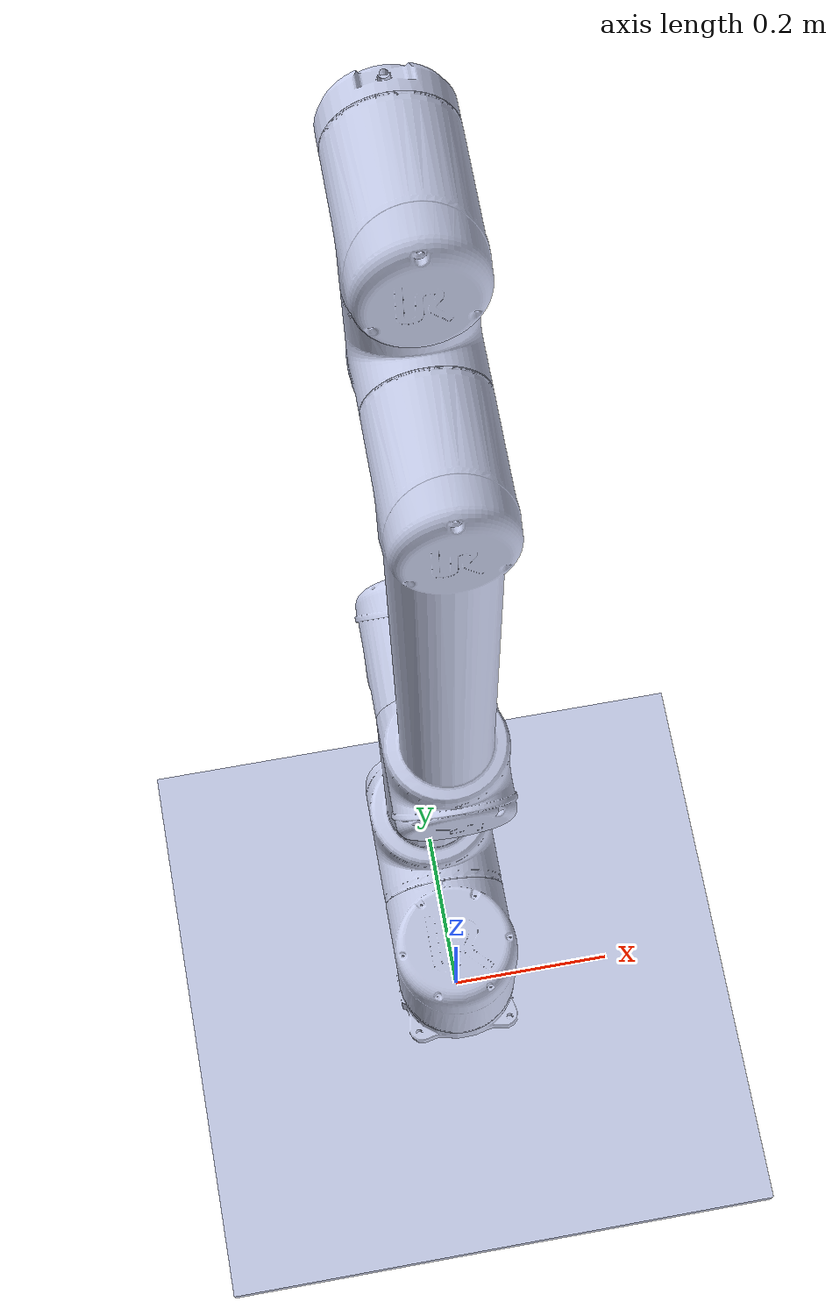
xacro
<?xml version="1.0" ?>
<robot
  name="robot1" xmlns:xacro="http://ros.org/wiki/xacro">

  <xacro:macro name="link_color">
    <visual>
    <material>
        <ambient>0.9803921568627451 0.996078431372549 0.29411764705882354 1.0</ambient>
        <diffuse>0.9803921568627451 0.996078431372549 0.29411764705882354 1.0</diffuse>
        <specular>0.1 0.1 0.1 1</specular>
        <emissive>0 0 0 0</emissive>
    </material>
    </visual>
  </xacro:macro>

  <xacro:macro name="end_color">
    <visual>
    <material>
        <ambient>0.0 0.0 0.0 1.0</ambient>
        <diffuse>0.0 0.0 0.0 1.0</diffuse>
        <specular>0.1 0.1 0.1 1</specular>
        <emissive>0 0 0 0</emissive>
    </material>
    </visual>
  </xacro:macro>

  <link
    name="base_link">
    <inertial>
      <origin
        xyz="-7.30538919227528E-06 -3.20191784901152E-07 -0.0134671059305124"
        rpy="0 0 0" />
      <mass
        value="15.4063242621386" />
      <inertia
        ixx="0.603251763987649"
        ixy="-4.88760436793575E-08"
        ixz="3.79010451427319E-06"
        iyy="0.603261512590646"
        iyz="7.86021947502808E-08"
        izz="1.20262898737613" />
    </inertial>
    <visual>
      <origin
        xyz="0 0 0"
        rpy="0 0 0" />
      <geometry>
        <mesh
          filename="package://robot1/meshes/base_link.STL" />
      </geometry>
      <material
        name="">
        <color
          rgba="0.792156862745098 0.819607843137255 0.933333333333333 1" />
      </material>
    </visual>
    <collision>
      <origin
        xyz="0 0 0"
        rpy="0 0 0" />
      <geometry>
        <mesh
          filename="package://robot1/meshes/base_link.STL" />
      </geometry>
    </collision>
  </link>
  <link
    name="link1">
    <inertial>
      <origin
        xyz="4.38048665487186E-06 0.0116148747458952 0.116476227493665"
        rpy="0 0 0" />
      <mass
        value="3.07353655486308" />
      <inertia
        ixx="0.0114770977343734"
        ixy="-2.40543138866941E-07"
        ixz="-9.95301824726199E-07"
        iyy="0.0107166191236518"
        iyz="-0.000858530382893393"
        izz="0.0101197363895926" />
    </inertial>
    <visual>
      <origin
        xyz="0 0 0"
        rpy="0 0 0" />
      <geometry>
        <mesh
          filename="package://robot1/meshes/link1.STL" />
      </geometry>
      <material
        name="">
        <color
          rgba="0.792156862745098 0.819607843137255 0.933333333333333 1" />
      </material>
    </visual>
    <collision>
      <origin
        xyz="0 0 0"
        rpy="0 0 0" />
      <geometry>
        <mesh
          filename="package://robot1/meshes/link1.STL" />
      </geometry>
    </collision>
  </link>
  <joint
    name="joint1"
    type="revolute">
    <origin
      xyz="0 0 0"
      rpy="0 0 0" />
    <parent
      link="base_link" />
    <child
      link="link1" />
    <axis
      xyz="0 0 -1" />
    <limit
      lower="-3.14"
      upper="3.14"
      effort="10"
      velocity="1" />
  </joint>
  <link
    name="link2">
    <inertial>
      <origin
        xyz="-7.45451210252937E-06 -0.251044061693309 0.170336901901617"
        rpy="0 0 0" />
      <mass
        value="8.71244803311742" />
      <inertia
        ixx="0.0965259415998011"
        ixy="-2.13497776947242E-08"
        ixz="3.72112999380899E-06"
        iyy="0.0199171780389162"
        iyz="0.000589136990789053"
        izz="0.0949166938443594" />
    </inertial>
    <visual>
      <origin
        xyz="0 0 0"
        rpy="0 0 0" />
      <geometry>
        <mesh
          filename="package://robot1/meshes/link2.STL" />
      </geometry>
      <material
        name="">
        <color
          rgba="0.792156862745098 0.819607843137255 0.933333333333333 1" />
      </material>
    </visual>
    <collision>
      <origin
        xyz="0 0 0"
        rpy="0 0 0" />
      <geometry>
        <mesh
          filename="package://robot1/meshes/link2.STL" />
      </geometry>
    </collision>
  </link>
  <joint
    name="joint2"
    type="revolute">
    <origin
      xyz="0 0 0.128"
      rpy="-1.5708 0 0" />
    <parent
      link="link1" />
    <child
      link="link2" />
    <axis
      xyz="0 0 -1" />
    <limit
      lower="-3.14"
      upper="3.14"
      effort="10"
      velocity="1" />
  </joint>
  <link
    name="link3">
    <inertial>
      <origin
        xyz="-0.257125340763884 -1.60217383433975E-06 -0.0514211549005825"
        rpy="0 0 0" />
      <mass
        value="4.65345509922606" />
      <inertia
        ixx="0.00595526346440659"
        ixy="-8.92186588330095E-07"
        ixz="0.00013040653688968"
        iyy="0.051712680747581"
        iyz="4.29338625921495E-07"
        izz="0.051423554377484" />
    </inertial>
    <visual>
      <origin
        xyz="0 0 0"
        rpy="0 0 0" />
      <geometry>
        <mesh
          filename="package://robot1/meshes/link3.STL" />
      </geometry>
      <material
        name="">
        <color
          rgba="0.792156862745098 0.819607843137255 0.933333333333333 1" />
      </material>
    </visual>
    <collision>
      <origin
        xyz="0 0 0"
        rpy="0 0 0" />
      <geometry>
        <mesh
          filename="package://robot1/meshes/link3.STL" />
      </geometry>
    </collision>
  </link>
  <joint
    name="joint3"
    type="revolute">
    <origin
      xyz="0 -0.6127 0"
      rpy="3.1416 0 1.5708" />
    <parent
      link="link2" />
    <child
      link="link3" />
    <axis
      xyz="0 0 -1" />
    <limit
      lower="-3.14"
      upper="3.14"
      effort="10"
      velocity="1" />
  </joint>
  <link
    name="link4">
    <inertial>
      <origin
        xyz="-0.00993735131460549 -2.94172033436085E-06 0.156287525736325"
        rpy="0 0 0" />
      <mass
        value="0.728500777005908" />
      <inertia
        ixx="0.000883754114763394"
        ixy="7.55882609347676E-08"
        ixz="9.07968654668462E-05"
        iyy="0.00111504085577103"
        iyz="-3.46121019169178E-08"
        izz="0.00103094213514052" />
    </inertial>
    <visual>
      <origin
        xyz="0 0 0"
        rpy="0 0 0" />
      <geometry>
        <mesh
          filename="package://robot1/meshes/link4.STL" />
      </geometry>
      <material
        name="">
        <color
          rgba="0.792156862745098 0.819607843137255 0.933333333333333 1" />
      </material>
    </visual>
    <collision>
      <origin
        xyz="0 0 0"
        rpy="0 0 0" />
      <geometry>
        <mesh
          filename="package://robot1/meshes/link4.STL" />
      </geometry>
    </collision>
  </link>
  <joint
    name="joint4"
    type="revolute">
    <origin
      xyz="-0.5716 0 0"
      rpy="-3.1416 0 0" />
    <parent
      link="link3" />
    <child
      link="link4" />
    <axis
      xyz="0 0 1" />
    <limit
      lower="-3.14"
      upper="3.14"
      effort="10"
      velocity="1" />
  </joint>
  <link
    name="link5">
    <inertial>
      <origin
        xyz="-3.41284303175038E-06 0.00972811364709419 0.108296484643591"
        rpy="0 0 0" />
      <mass
        value="0.728503531162964" />
      <inertia
        ixx="0.0011150531199321"
        ixy="-7.93334293505128E-08"
        ixz="-3.15095518426423E-08"
        iyy="0.000883753344085036"
        iyz="-9.0795808413743E-05"
        izz="0.00103092823091779" />
    </inertial>
    <visual>
      <origin
        xyz="0 0 0"
        rpy="0 0 0" />
      <geometry>
        <mesh
          filename="package://robot1/meshes/link5.STL" />
      </geometry>
      <material
        name="">
        <color
          rgba="0.792156862745098 0.819607843137255 0.933333333333333 1" />
      </material>
    </visual>
    <collision>
      <origin
        xyz="0 0 0"
        rpy="0 0 0" />
      <geometry>
        <mesh
          filename="package://robot1/meshes/link5.STL" />
      </geometry>
    </collision>
  </link>
  <joint
    name="joint5"
    type="revolute">
    <origin
      xyz="0 0 0.1639"
      rpy="1.5708 0 -1.5708" />
    <parent
      link="link4" />
    <child
      link="link5" />
    <axis
      xyz="0 0 1" />
    <limit
      lower="-3.14"
      upper="3.14"
      effort="10"
      velocity="1" />
  </joint>
  <link
    name="link6">
    <inertial>
      <origin
        xyz="-1.81475200348492E-08 0.000749432192382882 -0.0174703619816155"
        rpy="0 0 0" />
      <mass
        value="0.159236554852414" />
      <inertia
        ixx="8.19108707462541E-05"
        ixy="2.89904921024641E-11"
        ixz="3.01535271607663E-11"
        iyy="8.77583438434447E-05"
        iyz="-4.72731087498705E-07"
        izz="0.000149632360837381" />
    </inertial>
    <visual>
      <origin
        xyz="0 0 0"
        rpy="0 0 0" />
      <geometry>
        <mesh
          filename="package://robot1/meshes/link6.STL" />
      </geometry>
      <material
        name="">
        <color
          rgba="0.792156862745098 0.819607843137255 0.933333333333333 1" />
      </material>
    </visual>
    <collision>
      <origin
        xyz="0 0 0"
        rpy="0 0 0" />
      <geometry>
        <mesh
          filename="package://robot1/meshes/link6.STL" />
      </geometry>
    </collision>
  </link>
  <joint
    name="joint6"
    type="revolute">
    <origin
      xyz="0 0.0922 0.1157"
      rpy="-1.5708 0 0" />
    <parent
      link="link5" />
    <child
      link="link6" />
    <axis
      xyz="0 0 1" />
    <limit
      lower="-3.14"
      upper="3.14"
      effort="10"
      velocity="1" />
  </joint>

  <gazebo reference="base_link">
    <xacro:end_color />
  </gazebo>
  <gazebo reference="link1">
    <xacro:link_color />
  </gazebo>
  <gazebo reference="link2">
    <xacro:link_color />
  </gazebo>
  <gazebo reference="link3">
    <xacro:link_color />
  </gazebo>
  <gazebo reference="link4">
    <xacro:link_color />
  </gazebo>
  <gazebo reference="link5">
    <xacro:link_color />
  </gazebo>
  <gazebo reference="link6">
    <xacro:end_color />
  </gazebo>

    <ros2_control name="GazeboSystem" type="system">
    <hardware>
        <plugin>gazebo_ros2_control/GazeboSystem</plugin>
    </hardware>
    # Velocity Controllers

    <joint name="joint1">
        <command_interface name="velocity">
            <param name="min">-1000.0</param>
            <param name="max">1000.0</param>
        </command_interface>
        <state_interface name="position"/>
        <state_interface name="velocity"/>
    </joint>

    <joint name="joint2">
        <command_interface name="velocity">
            <param name="min">-1000.0</param>
            <param name="max">1000.0</param>
        </command_interface>
        <state_interface name="position"/>
        <state_interface name="velocity"/>
    </joint>

    <joint name="joint3">
        <command_interface name="velocity">
            <param name="min">-1000.0</param>
            <param name="max">1000.0</param>
        </command_interface>
        <state_interface name="position"/>
        <state_interface name="velocity"/>
    </joint>

    <joint name="joint4">
        <command_interface name="velocity">
            <param name="min">-1000.0</param>
            <param name="max">1000.0</param>
        </command_interface>
        <state_interface name="position"/>
        <state_interface name="velocity"/>
    </joint>

    <joint name="joint5">
        <command_interface name="velocity">
            <param name="min">-1000.0</param>
            <param name="max">1000.0</param>
        </command_interface>
        <state_interface name="position"/>
        <state_interface name="velocity"/>
    </joint>

    <joint name="joint6">
        <command_interface name="velocity">
            <param name="min">-1000.0</param>
            <param name="max">1000.0</param>
        </command_interface>
        <state_interface name="position"/>
        <state_interface name="velocity"/>
    </joint>

    # Position Controller
    <joint name="joint1">
        <command_interface name="position">
            <param name="min">-3.14</param>
            <param name="max">3.14</param>
        </command_interface>
        <state_interface name="position"/>
        <state_interface name="velocity"/>
    </joint>

    <joint name="joint2">
        <command_interface name="position">
            <param name="min">-3.14</param>
            <param name="max">3.14</param>
        </command_interface>
        <state_interface name="position"/>
        <state_interface name="velocity"/>
    </joint>

    <joint name="joint3">
        <command_interface name="position">
            <param name="min">-3.14</param>
            <param name="max">3.14</param>
        </command_interface>
        <state_interface name="position"/>
        <state_interface name="velocity"/>
    </joint>

    <joint name="joint4">
        <command_interface name="position">
            <param name="min">-3.14</param>
            <param name="max">3.14</param>
        </command_interface>
        <state_interface name="position"/>
        <state_interface name="velocity"/>
    </joint>

    <joint name="joint5">
        <command_interface name="position">
            <param name="min">-3.14</param>
            <param name="max">3.14</param>
        </command_interface>
        <state_interface name="position"/>
        <state_interface name="velocity"/>
    </joint>

    <joint name="joint6">
        <command_interface name="position">
            <param name="min">-3.14</param>
            <param name="max">3.14</param>
        </command_interface>
        <state_interface name="position"/>
        <state_interface name="velocity"/>
    </joint>

  </ros2_control>

  <gazebo>
    <plugin filename="libgazebo_ros2_control.so" name="gazebo_ros2_control">
        <parameters>$(find robot1)/config/control.yaml</parameters>
    </plugin>
  </gazebo>

  <gazebo>
    <plugin filename="libodometry_plugin.so" name="odometry_plugin">
      <!-- Name of the link for which the odometry is required -->
      <frame>link6</frame>
      <!-- Any arbitray name for the world frame -->
      <world_frame>fixed_world</world_frame>
    </plugin>
  </gazebo>

</robot>
